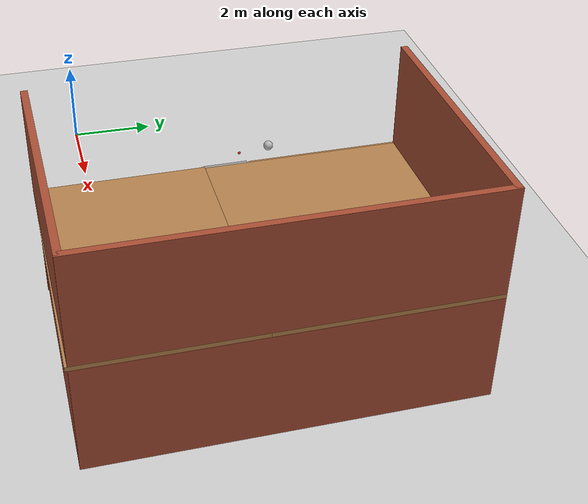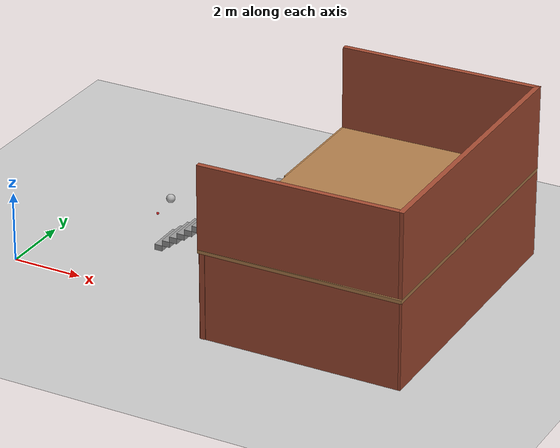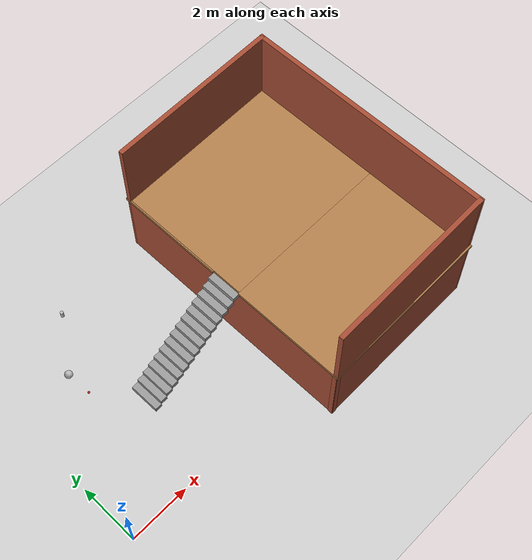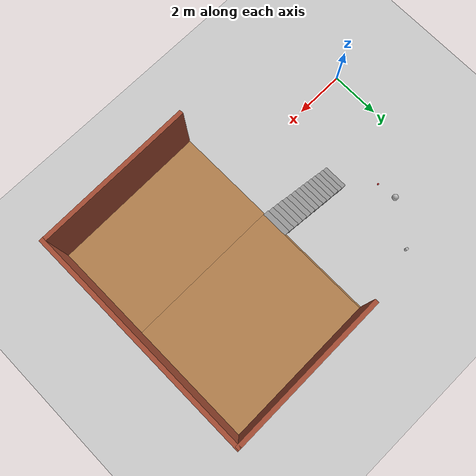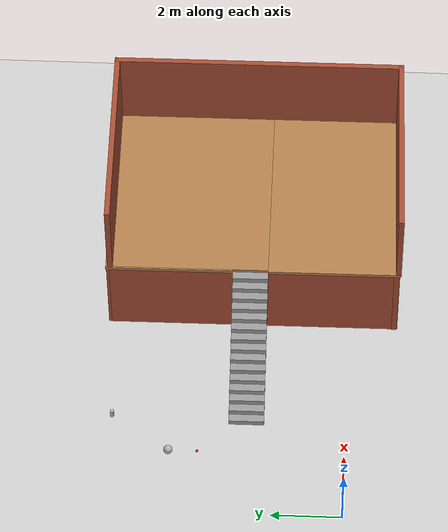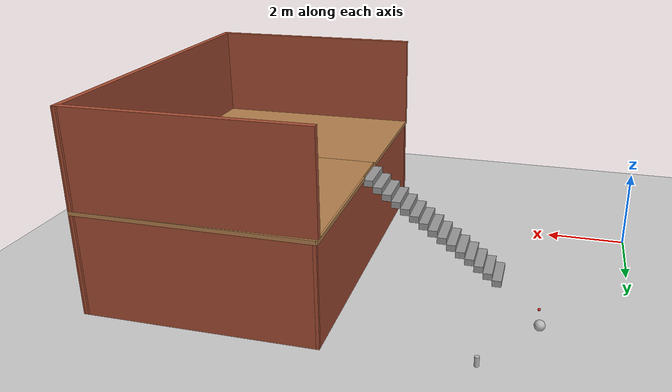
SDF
<sdf version="1.7">
 <world name="default">
  <model name="ground_plane">
   <static>1</static>
   <link name="link">
    <collision name="collision">
     <geometry><plane><normal>0 0 1</normal><size>100 100</size></plane></geometry>
     <surface><friction><ode><mu>100</mu><mu2>50</mu2></ode></friction></surface>
    </collision>
    <visual name="visual">
     <cast_shadows>0</cast_shadows>
     <geometry><plane><normal>0 0 1</normal><size>100 100</size></plane></geometry>
     <material>
      <script><uri>file://media/materials/scripts/gazebo.material</uri><name>Gazebo/Grey</name></script>
     </material>
    </visual>
   </link>
  </model>
  <model name="frc2016_ball">
   <pose>1.98556 4.93259 0.127 0 -0 0</pose>
   <link name="link">
    <inertial>
     <mass>0.213</mass>
     <inertia>
      <ixx>0.00322667</ixx>
      <ixy>0</ixy>
      <ixz>0</ixz>
      <iyy>0.00322667</iyy>
      <iyz>0</iyz>
      <izz>0.00322667</izz>
     </inertia>
    </inertial>
    <visual name="visual"><geometry><sphere><radius>0.127</radius></sphere></geometry></visual>
    <collision name="collision">
     <geometry><sphere><radius>0.127</radius></sphere></geometry>
     <surface>
      <bounce><restitution_coefficient>0.15937</restitution_coefficient><threshold>0</threshold></bounce>
      <contact><ode><max_vel>100</max_vel><min_depth>0.001</min_depth></ode></contact>
     </surface>
    </collision>
   </link>
  </model>
  <model name="beer">
   <link name="link">
    <pose>0 0 0.115 0 -0 0</pose>
    <inertial>
     <mass>0.39</mass>
     <inertia><ixx>0.00058</ixx><ixy>0</ixy><ixz>0</ixz><iyy>0.00058</iyy><iyz>0</iyz><izz>0.00019</izz></inertia>
    </inertial>
    <collision name="collision">
     <geometry><cylinder><radius>0.055</radius><length>0.23</length></cylinder></geometry>
    </collision>
    <visual name="visual">
     <geometry><cylinder><radius>0.055</radius><length>0.23</length></cylinder></geometry>
     <material>
      <script>
       <uri>model://beer/materials/scripts</uri>
       <uri>model://beer/materials/textures</uri>
       <name>Beer/Diffuse</name>
      </script>
     </material>
    </visual>
   </link>
   <pose>3.1628 6.57992 -2e-06 1e-06 0 -4e-05</pose>
  </model>
  <model name="cricket_ball">
   <link name="link">
    <pose>0 0 0.0375 0 -0 0</pose>
    <inertial>
     <mass>0.1467</mass>
     <inertia>
      <ixx>8.25187e-05</ixx>
      <ixy>0</ixy>
      <ixz>0</ixz>
      <iyy>8.25187e-05</iyy>
      <iyz>0</iyz>
      <izz>8.25187e-05</izz>
     </inertia>
    </inertial>
    <collision name="collision">
     <geometry><sphere><radius>0.0375</radius></sphere></geometry>
     <surface>
      <contact>
       <poissons_ratio>0.347</poissons_ratio>
       <elastic_modulus>8.8e+09</elastic_modulus>
       <ode><kp>100000</kp><kd>100</kd><max_vel>100</max_vel><min_depth>0.001</min_depth></ode>
      </contact>
      <friction>
       <torsional>
        <coefficient>1</coefficient>
        <use_patch_radius>0</use_patch_radius>
        <surface_radius>0.01</surface_radius>
       </torsional>
      </friction>
     </surface>
    </collision>
    <visual name="visual">
     <geometry><sphere><radius>0.0375</radius></sphere></geometry>
     <material>
      <script><uri>file://media/materials/scripts/gazebo.material</uri><name>Gazebo/Red</name></script>
     </material>
    </visual>
    <velocity_decay><linear>0</linear><angular>0.005</angular></velocity_decay>
   </link>
   <pose>2.0353 4.1192 -0.001014 0 -0 0</pose>
  </model>
  <model name="stairs2_0">
   <pose>7.61055 2.7524 0 0 -0 1.5768</pose>
   <link name="Floor_4">
    <pose>-0.01758 -1.72707 2.5 0 -0 0</pose>
    <visual name="Floor_4_Visual_0">
     <pose>-2.30149 0 0.05 0 -0 0</pose>
     <geometry><box><size>3.75682 5.7631 0.1</size></box></geometry>
     <material>
      <script><uri>file://media/materials/scripts/gazebo.material</uri><name>Gazebo/Wood</name></script>
      <ambient>1 1 1 1</ambient>
     </material>
     <meta><layer>1</layer></meta>
    </visual>
    <collision name="Floor_4_Collision_0">
     <geometry><box><size>3.75682 5.7631 0.1</size></box></geometry>
     <pose>-2.30149 0 0.05 0 -0 0</pose>
    </collision>
    <visual name="Floor_4_Visual_1">
     <pose>1.87841 -0.022934 0.05 0 -0 0</pose>
     <geometry><box><size>4.60298 5.71723 0.1</size></box></geometry>
     <material>
      <script><uri>file://media/materials/scripts/gazebo.material</uri><name>Gazebo/Wood</name></script>
      <ambient>1 1 1 1</ambient>
     </material>
     <meta><layer>1</layer></meta>
    </visual>
    <collision name="Floor_4_Collision_1">
     <geometry><box><size>4.60298 5.71723 0.1</size></box></geometry>
     <pose>1.87841 -0.022934 0.05 0 -0 0</pose>
    </collision>
    <visual name="Floor_4_Visual_2">
     <pose>2.37841 2.85862 0.05 0 -0 0</pose>
     <geometry><box><size>3.60298 0.045868 0.1</size></box></geometry>
     <material>
      <script><uri>file://media/materials/scripts/gazebo.material</uri><name>Gazebo/Wood</name></script>
      <ambient>1 1 1 1</ambient>
     </material>
     <meta><layer>1</layer></meta>
    </visual>
    <collision name="Floor_4_Collision_2">
     <geometry><box><size>3.60298 0.045868 0.1</size></box></geometry>
     <pose>2.37841 2.85862 0.05 0 -0 0</pose>
    </collision>
   </link>
   <link name="Stairs_3">
    <visual name="Stairs_3_Visual_0">
     <pose>0.059339 4.49195 0.083333 0 -0 0</pose>
     <geometry><box><size>1 0.233333 0.166667</size></box></geometry>
     <material>
      <script><uri>file://media/materials/scripts/gazebo.material</uri><name>Gazebo/Grey</name></script>
      <ambient>1 1 1 1</ambient>
     </material>
     <meta><layer>0</layer></meta>
    </visual>
    <collision name="Stairs_3_Collision_0">
     <geometry><box><size>1 0.233333 0.166667</size></box></geometry>
     <pose>0.059339 4.49195 0.083333 0 -0 0</pose>
    </collision>
    <visual name="Stairs_3_Visual_1">
     <pose>0.059339 4.25862 0.25 0 -0 0</pose>
     <geometry><box><size>1 0.233333 0.166667</size></box></geometry>
     <material>
      <script><uri>file://media/materials/scripts/gazebo.material</uri><name>Gazebo/Grey</name></script>
      <ambient>1 1 1 1</ambient>
     </material>
     <meta><layer>0</layer></meta>
    </visual>
    <collision name="Stairs_3_Collision_1">
     <geometry><box><size>1 0.233333 0.166667</size></box></geometry>
     <pose>0.059339 4.25862 0.25 0 -0 0</pose>
    </collision>
    <visual name="Stairs_3_Visual_2">
     <pose>0.059339 4.02528 0.416667 0 -0 0</pose>
     <geometry><box><size>1 0.233333 0.166667</size></box></geometry>
     <material>
      <script><uri>file://media/materials/scripts/gazebo.material</uri><name>Gazebo/Grey</name></script>
      <ambient>1 1 1 1</ambient>
     </material>
     <meta><layer>0</layer></meta>
    </visual>
    <collision name="Stairs_3_Collision_2">
     <geometry><box><size>1 0.233333 0.166667</size></box></geometry>
     <pose>0.059339 4.02528 0.416667 0 -0 0</pose>
    </collision>
    <visual name="Stairs_3_Visual_3">
     <pose>0.059339 3.79195 0.583333 0 -0 0</pose>
     <geometry><box><size>1 0.233333 0.166667</size></box></geometry>
     <material>
      <script><uri>file://media/materials/scripts/gazebo.material</uri><name>Gazebo/Grey</name></script>
      <ambient>1 1 1 1</ambient>
     </material>
     <meta><layer>0</layer></meta>
    </visual>
    <collision name="Stairs_3_Collision_3">
     <geometry><box><size>1 0.233333 0.166667</size></box></geometry>
     <pose>0.059339 3.79195 0.583333 0 -0 0</pose>
    </collision>
    <visual name="Stairs_3_Visual_4">
     <pose>0.059339 3.55862 0.75 0 -0 0</pose>
     <geometry><box><size>1 0.233333 0.166667</size></box></geometry>
     <material>
      <script><uri>file://media/materials/scripts/gazebo.material</uri><name>Gazebo/Grey</name></script>
      <ambient>1 1 1 1</ambient>
     </material>
     <meta><layer>0</layer></meta>
    </visual>
    <collision name="Stairs_3_Collision_4">
     <geometry><box><size>1 0.233333 0.166667</size></box></geometry>
     <pose>0.059339 3.55862 0.75 0 -0 0</pose>
    </collision>
    <visual name="Stairs_3_Visual_5">
     <pose>0.059339 3.32528 0.916667 0 -0 0</pose>
     <geometry><box><size>1 0.233333 0.166667</size></box></geometry>
     <material>
      <script><uri>file://media/materials/scripts/gazebo.material</uri><name>Gazebo/Grey</name></script>
      <ambient>1 1 1 1</ambient>
     </material>
     <meta><layer>0</layer></meta>
    </visual>
    <collision name="Stairs_3_Collision_5">
     <geometry><box><size>1 0.233333 0.166667</size></box></geometry>
     <pose>0.059339 3.32528 0.916667 0 -0 0</pose>
    </collision>
    <visual name="Stairs_3_Visual_6">
     <pose>0.059339 3.09195 1.08333 0 -0 0</pose>
     <geometry><box><size>1 0.233333 0.166667</size></box></geometry>
     <material>
      <script><uri>file://media/materials/scripts/gazebo.material</uri><name>Gazebo/Grey</name></script>
      <ambient>1 1 1 1</ambient>
     </material>
     <meta><layer>0</layer></meta>
    </visual>
    <collision name="Stairs_3_Collision_6">
     <geometry><box><size>1 0.233333 0.166667</size></box></geometry>
     <pose>0.059339 3.09195 1.08333 0 -0 0</pose>
    </collision>
    <visual name="Stairs_3_Visual_7">
     <pose>0.059339 2.85862 1.25 0 -0 0</pose>
     <geometry><box><size>1 0.233333 0.166667</size></box></geometry>
     <material>
      <script><uri>file://media/materials/scripts/gazebo.material</uri><name>Gazebo/Grey</name></script>
      <ambient>1 1 1 1</ambient>
     </material>
     <meta><layer>0</layer></meta>
    </visual>
    <collision name="Stairs_3_Collision_7">
     <geometry><box><size>1 0.233333 0.166667</size></box></geometry>
     <pose>0.059339 2.85862 1.25 0 -0 0</pose>
    </collision>
    <visual name="Stairs_3_Visual_8">
     <pose>0.059339 2.62528 1.41667 0 -0 0</pose>
     <geometry><box><size>1 0.233333 0.166667</size></box></geometry>
     <material>
      <script><uri>file://media/materials/scripts/gazebo.material</uri><name>Gazebo/Grey</name></script>
      <ambient>1 1 1 1</ambient>
     </material>
     <meta><layer>0</layer></meta>
    </visual>
    <collision name="Stairs_3_Collision_8">
     <geometry><box><size>1 0.233333 0.166667</size></box></geometry>
     <pose>0.059339 2.62528 1.41667 0 -0 0</pose>
    </collision>
    <visual name="Stairs_3_Visual_9">
     <pose>0.059339 2.39195 1.58333 0 -0 0</pose>
     <geometry><box><size>1 0.233333 0.166667</size></box></geometry>
     <material>
      <script><uri>file://media/materials/scripts/gazebo.material</uri><name>Gazebo/Grey</name></script>
      <ambient>1 1 1 1</ambient>
     </material>
     <meta><layer>0</layer></meta>
    </visual>
    <collision name="Stairs_3_Collision_9">
     <geometry><box><size>1 0.233333 0.166667</size></box></geometry>
     <pose>0.059339 2.39195 1.58333 0 -0 0</pose>
    </collision>
    <visual name="Stairs_3_Visual_10">
     <pose>0.059339 2.15862 1.75 0 -0 0</pose>
     <geometry><box><size>1 0.233333 0.166667</size></box></geometry>
     <material>
      <script><uri>file://media/materials/scripts/gazebo.material</uri><name>Gazebo/Grey</name></script>
      <ambient>1 1 1 1</ambient>
     </material>
     <meta><layer>0</layer></meta>
    </visual>
    <collision name="Stairs_3_Collision_10">
     <geometry><box><size>1 0.233333 0.166667</size></box></geometry>
     <pose>0.059339 2.15862 1.75 0 -0 0</pose>
    </collision>
    <visual name="Stairs_3_Visual_11">
     <pose>0.059339 1.92528 1.91667 0 -0 0</pose>
     <geometry><box><size>1 0.233333 0.166667</size></box></geometry>
     <material>
      <script><uri>file://media/materials/scripts/gazebo.material</uri><name>Gazebo/Grey</name></script>
      <ambient>1 1 1 1</ambient>
     </material>
     <meta><layer>0</layer></meta>
    </visual>
    <collision name="Stairs_3_Collision_11">
     <geometry><box><size>1 0.233333 0.166667</size></box></geometry>
     <pose>0.059339 1.92528 1.91667 0 -0 0</pose>
    </collision>
    <visual name="Stairs_3_Visual_12">
     <pose>0.059339 1.69195 2.08333 0 -0 0</pose>
     <geometry><box><size>1 0.233333 0.166667</size></box></geometry>
     <material>
      <script><uri>file://media/materials/scripts/gazebo.material</uri><name>Gazebo/Grey</name></script>
      <ambient>1 1 1 1</ambient>
     </material>
     <meta><layer>0</layer></meta>
    </visual>
    <collision name="Stairs_3_Collision_12">
     <geometry><box><size>1 0.233333 0.166667</size></box></geometry>
     <pose>0.059339 1.69195 2.08333 0 -0 0</pose>
    </collision>
    <visual name="Stairs_3_Visual_13">
     <pose>0.059339 1.45862 2.25 0 -0 0</pose>
     <geometry><box><size>1 0.233333 0.166667</size></box></geometry>
     <material>
      <script><uri>file://media/materials/scripts/gazebo.material</uri><name>Gazebo/Grey</name></script>
      <ambient>1 1 1 1</ambient>
     </material>
     <meta><layer>0</layer></meta>
    </visual>
    <collision name="Stairs_3_Collision_13">
     <geometry><box><size>1 0.233333 0.166667</size></box></geometry>
     <pose>0.059339 1.45862 2.25 0 -0 0</pose>
    </collision>
    <visual name="Stairs_3_Visual_14">
     <pose>0.059339 1.22528 2.41667 0 -0 0</pose>
     <geometry><box><size>1 0.233333 0.166667</size></box></geometry>
     <material>
      <script><uri>file://media/materials/scripts/gazebo.material</uri><name>Gazebo/Grey</name></script>
      <ambient>1 1 1 1</ambient>
     </material>
     <meta><layer>0</layer></meta>
    </visual>
    <collision name="Stairs_3_Collision_14">
     <geometry><box><size>1 0.233333 0.166667</size></box></geometry>
     <pose>0.059339 1.22528 2.41667 0 -0 0</pose>
    </collision>
   </link>
   <link name="Wall_44">
    <collision name="Wall_44_Collision">
     <geometry><box><size>5.70366 0.15 2.5</size></box></geometry>
     <pose>0 0 1.25 0 -0 0</pose>
    </collision>
    <visual name="Wall_44_Visual">
     <pose>0 0 1.25 0 -0 0</pose>
     <geometry><box><size>5.70366 0.15 2.5</size></box></geometry>
     <material>
      <script><uri>file://media/materials/scripts/gazebo.material</uri><name>Gazebo/Bricks</name></script>
      <ambient>1 1 1 1</ambient>
     </material>
     <meta><layer>0</layer></meta>
    </visual>
    <pose>-4.0693 -1.71554 0 0 -0 -1.5708</pose>
   </link>
   <link name="Wall_45">
    <collision name="Wall_45_Collision">
     <geometry><box><size>8.30592 0.15 2.5</size></box></geometry>
     <pose>0 0 1.25 0 -0 0</pose>
    </collision>
    <visual name="Wall_45_Visual">
     <pose>0 0 1.25 0 -0 0</pose>
     <geometry><box><size>8.30592 0.15 2.5</size></box></geometry>
     <material>
      <script><uri>file://media/materials/scripts/gazebo.material</uri><name>Gazebo/Bricks</name></script>
      <ambient>1 1 1 1</ambient>
     </material>
     <meta><layer>0</layer></meta>
    </visual>
    <pose>0.008655 -4.53046 0 0 -0 -0.000761</pose>
   </link>
   <link name="Wall_46">
    <collision name="Wall_46_Collision">
     <geometry><box><size>5.6862 0.15 2.5</size></box></geometry>
     <pose>0 0 1.25 0 -0 0</pose>
    </collision>
    <visual name="Wall_46_Visual">
     <pose>0 0 1.25 0 -0 0</pose>
     <geometry><box><size>5.6862 0.15 2.5</size></box></geometry>
     <material>
      <script><uri>file://media/materials/scripts/gazebo.material</uri><name>Gazebo/Bricks</name></script>
      <ambient>1 1 1 1</ambient>
     </material>
     <meta><layer>0</layer></meta>
    </visual>
    <pose>4.07787 -1.73049 0 0 -0 1.57396</pose>
   </link>
   <link name="Wall_47">
    <collision name="Wall_47_Collision">
     <geometry><box><size>8.30592 0.15 2.5</size></box></geometry>
     <pose>0 0 1.25 0 -0 0</pose>
    </collision>
    <visual name="Wall_47_Visual">
     <pose>0 0 1.25 0 -0 0</pose>
     <geometry><box><size>8.30592 0.15 2.5</size></box></geometry>
     <material>
      <script><uri>file://media/materials/scripts/gazebo.material</uri><name>Gazebo/Bricks</name></script>
      <ambient>1 1 1 1</ambient>
     </material>
     <meta><layer>0</layer></meta>
    </visual>
    <pose>-0.008835 1.0407 0 0 -0 3.14083</pose>
   </link>
   <link name="Wall_49">
    <collision name="Wall_49_Collision">
     <geometry><box><size>5.7214 0.15 2.5</size></box></geometry>
     <pose>0 0 1.25 0 -0 0</pose>
    </collision>
    <visual name="Wall_49_Visual">
     <pose>0 0 1.25 0 -0 0</pose>
     <geometry><box><size>5.7214 0.15 2.5</size></box></geometry>
     <material>
      <script><uri>file://media/materials/scripts/gazebo.material</uri><name>Gazebo/Bricks</name></script>
      <ambient>1 1 1 1</ambient>
     </material>
     <meta><layer>1</layer></meta>
    </visual>
    <pose>-4.09554 -1.7068 2.5 0 -0 -1.56138</pose>
   </link>
   <link name="Wall_50">
    <collision name="Wall_50_Collision">
     <geometry><box><size>8.30592 0.15 2.5</size></box></geometry>
     <pose>0 0 1.25 0 -0 0</pose>
    </collision>
    <visual name="Wall_50_Visual">
     <pose>0 0 1.25 0 -0 0</pose>
     <geometry><box><size>8.30592 0.15 2.5</size></box></geometry>
     <material>
      <script><uri>file://media/materials/scripts/gazebo.material</uri><name>Gazebo/Bricks</name></script>
      <ambient>1 1 1 1</ambient>
     </material>
     <meta><layer>1</layer></meta>
    </visual>
    <pose>0.008655 -4.53045 2.5 0 -0 -0.000761</pose>
   </link>
   <link name="Wall_51">
    <collision name="Wall_51_Collision">
     <geometry><box><size>5.7214 0.15 2.5</size></box></geometry>
     <pose>0 0 1.25 0 -0 0</pose>
    </collision>
    <visual name="Wall_51_Visual">
     <pose>0 0 1.25 0 -0 0</pose>
     <geometry><box><size>5.7214 0.15 2.5</size></box></geometry>
     <material>
      <script><uri>file://media/materials/scripts/gazebo.material</uri><name>Gazebo/Bricks</name></script>
      <ambient>1 1 1 1</ambient>
     </material>
     <meta><layer>1</layer></meta>
    </visual>
    <pose>4.06038 -1.713 2.5 0 -0 1.58021</pose>
   </link>
   <static>1</static>
  </model>
 </world>
</sdf>
